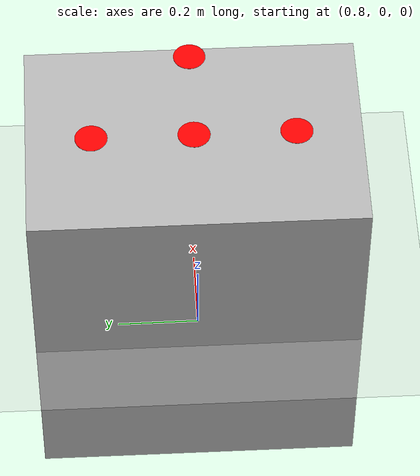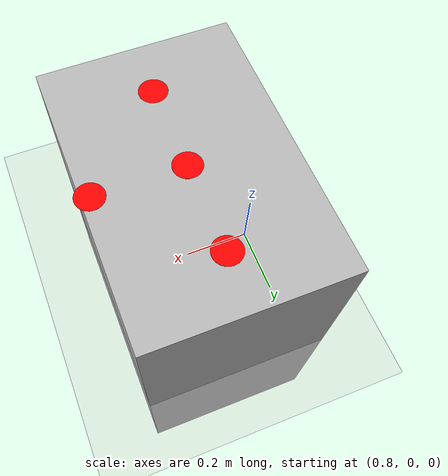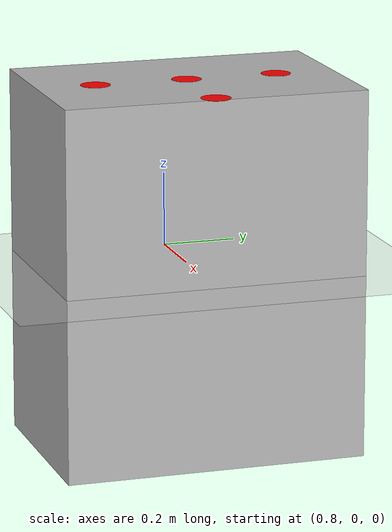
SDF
<sdf version="1.5">
 <world name="default">
  <include><uri>model://sun</uri></include>
  <include><uri>model://ground_plane</uri></include>
  <include><uri>model://land_target</uri></include>
 </world>
</sdf>

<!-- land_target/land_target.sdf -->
<sdf version="1.4">
<model name="land_target">
  <pose>1 0 0 0 0 -1.57</pose>
  <static>true</static>
    <link name="link">

      <collision name="collision">
        <geometry>
          <box>
            <size>0.82 0.55 1</size>
          </box>
        </geometry>
      </collision>
      <visual name="visual">
        <geometry>
          <box>
            <size>0.82 0.55 1</size>
          </box>
        </geometry>
      </visual>

      <visual name='middle_pt_visual'>
        <pose frame=''>0 0 0.50 0 -0 0</pose>
        <geometry>
          <cylinder>
            <radius>0.04</radius>
            <length>0.001</length>
          </cylinder>
        </geometry>
        <material>
          <shader type='pixel'>
            <normal_map>__default__</normal_map>
          </shader>
          <ambient>1 0 0 0</ambient>
          <diffuse>1 0 0 0</diffuse>
          <specular>1 0 0 0</specular>
          <emissive>1 0 0 0</emissive>
          <script>
            <name>ModelPreview_1::link::left_pt_visual_MATERIAL_</name>
          </script>
        </material>
        <cast_shadows>1</cast_shadows>
        <transparency>0</transparency>
      </visual>

      <visual name='right_pt_visual'>
        <pose frame=''>0.25 0 0.50 0 -0 0</pose>
        <geometry>
          <cylinder>
            <radius>0.04</radius>
            <length>0.001</length>
          </cylinder>
        </geometry>
        <material>
          <shader type='pixel'>
            <normal_map>__default__</normal_map>
          </shader>
          <ambient>1 0 0 0</ambient>
          <diffuse>1 0 0 0</diffuse>
          <specular>1 0 0 0</specular>
          <emissive>1 0 0 0</emissive>
          <script>
            <name>ModelPreview_1::link::left_pt_visual_MATERIAL_</name>
          </script>
        </material>
        <cast_shadows>1</cast_shadows>
        <transparency>0</transparency>
      </visual>

      <visual name='left_pt_visual'>
        <pose frame=''>-0.25 0 0.50 0 -0 0</pose>
        <geometry>
          <cylinder>
            <radius>0.04</radius>
            <length>0.001</length>
          </cylinder>
        </geometry>
        <material>
          <shader type='pixel'>
            <normal_map>__default__</normal_map>
          </shader>
          <ambient>1 0 0 0</ambient>
          <diffuse>1 0 0 0</diffuse>
          <specular>1 0 0 0</specular>
          <emissive>1 0 0 0</emissive>
          <script>
            <name>ModelPreview_1::link::left_pt_visual_MATERIAL_</name>
          </script>
        </material>
        <cast_shadows>1</cast_shadows>
        <transparency>0</transparency>
      </visual>

      <visual name='front_pt_visual'>
        <pose frame=''>0 0.25 0.50 0 -0 0</pose>
        <geometry>
          <cylinder>
            <radius>0.04</radius>
            <length>0.001</length>
          </cylinder>
        </geometry>
        <material>
          <shader type='pixel'>
            <normal_map>__default__</normal_map>
          </shader>
          <ambient>1 0 0 0</ambient>
          <diffuse>1 0 0 0</diffuse>
          <specular>1 0 0 0</specular>
          <emissive>1 0 0 0</emissive>
          <script>
            <name>ModelPreview_1::link::left_pt_visual_MATERIAL_</name>
          </script>
        </material>
        <cast_shadows>1</cast_shadows>
        <transparency>0</transparency>
      </visual>

    </link>
  </model>
</sdf>
